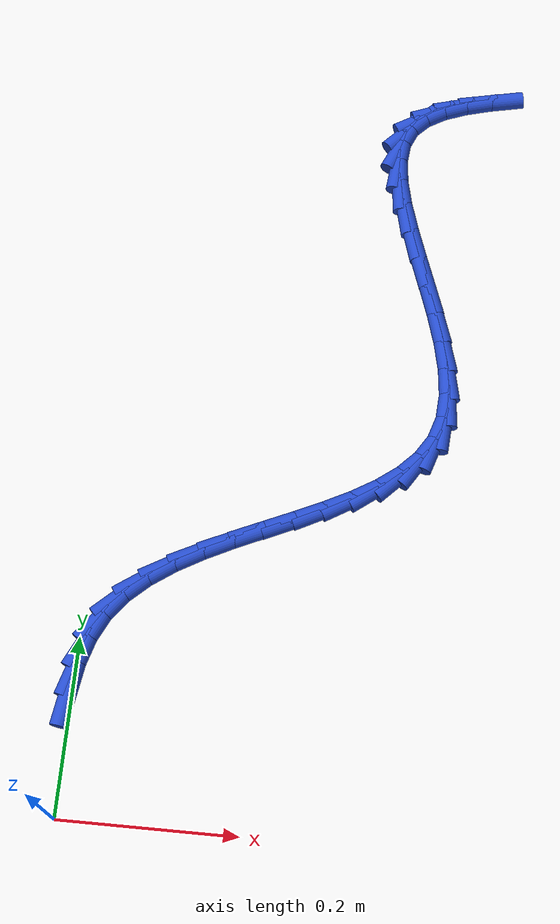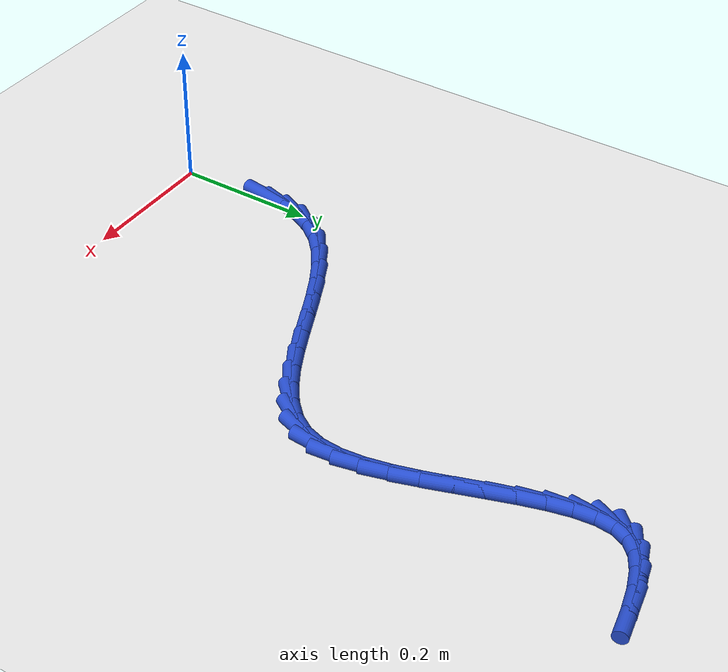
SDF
<sdf version="1.6">
 <world name="default">
  <model name="ground_plane">
   <static>1</static>
   <link name="link">
    <collision name="collision">
     <geometry><plane><normal>0 0 1</normal><size>100 100</size></plane></geometry>
     <surface><friction><ode><mu>100</mu><mu2>50</mu2></ode></friction></surface>
    </collision>
    <visual name="visual">
     <cast_shadows>0</cast_shadows>
     <geometry><plane><normal>0 0 1</normal><size>100 100</size></plane></geometry>
     <material>
      <script><uri>file://media/materials/scripts/gazebo.material</uri><name>Gazebo/WhiteGlow</name></script>
     </material>
    </visual>
   </link>
  </model>
  <model name="line">
   <link name="link_4">
    <pose>-0.0029370685498237925 0.137048403521154 0.01 0 1.57 1.4179691063453683</pose>
    <collision name="collision">
     <geometry><cylinder><radius>0.01</radius><length>0.08</length></cylinder></geometry>
    </collision>
    <visual name="visual">
     <material>
      <script><name>Gazebo/Blue</name><uri>file://media/materials/scripts/gazebo.material</uri></script>
     </material>
     <geometry><cylinder><radius>0.01</radius><length>0.08</length></cylinder></geometry>
    </visual>
   </link>
   <link name="link_5">
    <pose>0.001998958278450603 0.16909464480857384 0.01 0 1.57 1.2850943708031755</pose>
    <collision name="collision">
     <geometry><cylinder><radius>0.01</radius><length>0.08</length></cylinder></geometry>
    </collision>
    <visual name="visual">
     <material>
      <script><name>Gazebo/Blue</name><uri>file://media/materials/scripts/gazebo.material</uri></script>
     </material>
     <geometry><cylinder><radius>0.01</radius><length>0.08</length></cylinder></geometry>
    </visual>
   </link>
   <link name="link_6">
    <pose>0.010816575801971469 0.1991132957275735 0.01 0 1.57 1.1131262142818894</pose>
    <collision name="collision">
     <geometry><cylinder><radius>0.01</radius><length>0.08</length></cylinder></geometry>
    </collision>
    <visual name="visual">
     <material>
      <script><name>Gazebo/Blue</name><uri>file://media/materials/scripts/gazebo.material</uri></script>
     </material>
     <geometry><cylinder><radius>0.01</radius><length>0.08</length></cylinder></geometry>
    </visual>
   </link>
   <link name="link_7">
    <pose>0.02432252057521597 0.22653373301251667 0.01 0 1.57 0.912755148140058</pose>
    <collision name="collision">
     <geometry><cylinder><radius>0.01</radius><length>0.08</length></cylinder></geometry>
    </collision>
    <visual name="visual">
     <material>
      <script><name>Gazebo/Blue</name><uri>file://media/materials/scripts/gazebo.material</uri></script>
     </material>
     <geometry><cylinder><radius>0.01</radius><length>0.08</length></cylinder></geometry>
    </visual>
   </link>
   <link name="link_8">
    <pose>0.04315058680638629 0.2508917836698029 0.01 0 1.57 0.7380858928481054</pose>
    <collision name="collision">
     <geometry><cylinder><radius>0.01</radius><length>0.08</length></cylinder></geometry>
    </collision>
    <visual name="visual">
     <material>
      <script><name>Gazebo/Blue</name><uri>file://media/materials/scripts/gazebo.material</uri></script>
     </material>
     <geometry><cylinder><radius>0.01</radius><length>0.08</length></cylinder></geometry>
    </visual>
   </link>
   <link name="link_9">
    <pose>0.06681224707028963 0.272414091303156 0.01 0 1.57 0.6082317110557185</pose>
    <collision name="collision">
     <geometry><cylinder><radius>0.01</radius><length>0.08</length></cylinder></geometry>
    </collision>
    <visual name="visual">
     <material>
      <script><name>Gazebo/Blue</name><uri>file://media/materials/scripts/gazebo.material</uri></script>
     </material>
     <geometry><cylinder><radius>0.01</radius><length>0.08</length></cylinder></geometry>
    </visual>
   </link>
   <link name="link_10">
    <pose>0.09437104744143045 0.2916030093053501 0.01 0 1.57 0.5171569191798234</pose>
    <collision name="collision">
     <geometry><cylinder><radius>0.01</radius><length>0.08</length></cylinder></geometry>
    </collision>
    <visual name="visual">
     <material>
      <script><name>Gazebo/Blue</name><uri>file://media/materials/scripts/gazebo.material</uri></script>
     </material>
     <geometry><cylinder><radius>0.01</radius><length>0.08</length></cylinder></geometry>
    </visual>
   </link>
   <link name="link_11">
    <pose>0.12488936577738169 0.3089616101354428 0.01 0 1.57 0.4577607158504061</pose>
    <collision name="collision">
     <geometry><cylinder><radius>0.01</radius><length>0.08</length></cylinder></geometry>
    </collision>
    <visual name="visual">
     <material>
      <script><name>Gazebo/Blue</name><uri>file://media/materials/scripts/gazebo.material</uri></script>
     </material>
     <geometry><cylinder><radius>0.01</radius><length>0.08</length></cylinder></geometry>
    </visual>
   </link>
   <link name="link_12">
    <pose>0.1574295799357159 0.3249929662524916 0.01 0 1.57 0.4247360248727408</pose>
    <collision name="collision">
     <geometry><cylinder><radius>0.01</radius><length>0.08</length></cylinder></geometry>
    </collision>
    <visual name="visual">
     <material>
      <script><name>Gazebo/Blue</name><uri>file://media/materials/scripts/gazebo.material</uri></script>
     </material>
     <geometry><cylinder><radius>0.01</radius><length>0.08</length></cylinder></geometry>
    </visual>
   </link>
   <link name="link_13">
    <pose>0.191054067774006 0.34020015011555427 0.01 0 1.57 0.4151711122764104</pose>
    <collision name="collision">
     <geometry><cylinder><radius>0.01</radius><length>0.08</length></cylinder></geometry>
    </collision>
    <visual name="visual">
     <material>
      <script><name>Gazebo/Blue</name><uri>file://media/materials/scripts/gazebo.material</uri></script>
     </material>
     <geometry><cylinder><radius>0.01</radius><length>0.08</length></cylinder></geometry>
    </visual>
   </link>
   <link name="link_14">
    <pose>0.22482520714982485 0.3550862341836883 0.01 0 1.57 0.4285625223447429</pose>
    <collision name="collision">
     <geometry><cylinder><radius>0.01</radius><length>0.08</length></cylinder></geometry>
    </collision>
    <visual name="visual">
     <material>
      <script><name>Gazebo/Blue</name><uri>file://media/materials/scripts/gazebo.material</uri></script>
     </material>
     <geometry><cylinder><radius>0.01</radius><length>0.08</length></cylinder></geometry>
    </visual>
   </link>
   <link name="link_15">
    <pose>0.25780537592074504 0.3701542909159514 0.01 0 1.57 0.4669013654232105</pose>
    <collision name="collision">
     <geometry><cylinder><radius>0.01</radius><length>0.08</length></cylinder></geometry>
    </collision>
    <visual name="visual">
     <material>
      <script><name>Gazebo/Blue</name><uri>file://media/materials/scripts/gazebo.material</uri></script>
     </material>
     <geometry><cylinder><radius>0.01</radius><length>0.08</length></cylinder></geometry>
    </visual>
   </link>
   <link name="link_16">
    <pose>0.28905695194433934 0.385907392771401 0.01 0 1.57 0.5350002826190938</pose>
    <collision name="collision">
     <geometry><cylinder><radius>0.01</radius><length>0.08</length></cylinder></geometry>
    </collision>
    <visual name="visual">
     <material>
      <script><name>Gazebo/Blue</name><uri>file://media/materials/scripts/gazebo.material</uri></script>
     </material>
     <geometry><cylinder><radius>0.01</radius><length>0.08</length></cylinder></geometry>
    </visual>
   </link>
   <link name="link_17">
    <pose>0.3176423130781808 0.402848612209095 0.01 0 1.57 0.6408382634927831</pose>
    <collision name="collision">
     <geometry><cylinder><radius>0.01</radius><length>0.08</length></cylinder></geometry>
    </collision>
    <visual name="visual">
     <material>
      <script><name>Gazebo/Blue</name><uri>file://media/materials/scripts/gazebo.material</uri></script>
     </material>
     <geometry><cylinder><radius>0.01</radius><length>0.08</length></cylinder></geometry>
    </visual>
   </link>
   <link name="link_18">
    <pose>0.34262383717984185 0.42148102168809076 0.01 0 1.57 0.794766380300998</pose>
    <collision name="collision">
     <geometry><cylinder><radius>0.01</radius><length>0.08</length></cylinder></geometry>
    </collision>
    <visual name="visual">
     <material>
      <script><name>Gazebo/Blue</name><uri>file://media/materials/scripts/gazebo.material</uri></script>
     </material>
     <geometry><cylinder><radius>0.01</radius><length>0.08</length></cylinder></geometry>
    </visual>
   </link>
   <link name="link_19">
    <pose>0.36306390210689554 0.44230769366744604 0.01 0 1.57 1.004334595589213</pose>
    <collision name="collision">
     <geometry><cylinder><radius>0.01</radius><length>0.08</length></cylinder></geometry>
    </collision>
    <visual name="visual">
     <material>
      <script><name>Gazebo/Blue</name><uri>file://media/materials/scripts/gazebo.material</uri></script>
     </material>
     <geometry><cylinder><radius>0.01</radius><length>0.08</length></cylinder></geometry>
    </visual>
   </link>
   <link name="link_20">
    <pose>0.3780248857169144 0.46583170060621826 0.01 0 1.57 1.2606739714048936</pose>
    <collision name="collision">
     <geometry><cylinder><radius>0.01</radius><length>0.08</length></cylinder></geometry>
    </collision>
    <visual name="visual">
     <material>
      <script><name>Gazebo/Blue</name><uri>file://media/materials/scripts/gazebo.material</uri></script>
     </material>
     <geometry><cylinder><radius>0.01</radius><length>0.08</length></cylinder></geometry>
    </visual>
   </link>
   <link name="link_21">
    <pose>0.3865860484981557 0.49254672936063276 0.01 0 1.57 1.5016194777007026</pose>
    <collision name="collision">
     <geometry><cylinder><radius>0.01</radius><length>0.08</length></cylinder></geometry>
    </collision>
    <visual name="visual">
     <material>
      <script><name>Gazebo/Blue</name><uri>file://media/materials/scripts/gazebo.material</uri></script>
     </material>
     <geometry><cylinder><radius>0.01</radius><length>0.08</length></cylinder></geometry>
    </visual>
   </link>
   <link name="link_22">
    <pose>0.3886602577044926 0.522483037706042 0.01 0 1.57 -1.469624507470114</pose>
    <collision name="collision">
     <geometry><cylinder><radius>0.01</radius><length>0.08</length></cylinder></geometry>
    </collision>
    <visual name="visual">
     <material>
      <script><name>Gazebo/Blue</name><uri>file://media/materials/scripts/gazebo.material</uri></script>
     </material>
     <geometry><cylinder><radius>0.01</radius><length>0.08</length></cylinder></geometry>
    </visual>
   </link>
   <link name="link_23">
    <pose>0.3853587103914075 0.5550046929531245 0.01 0 1.57 -1.3569918511122476</pose>
    <collision name="collision">
     <geometry><cylinder><radius>0.01</radius><length>0.08</length></cylinder></geometry>
    </collision>
    <visual name="visual">
     <material>
      <script><name>Gazebo/Blue</name><uri>file://media/materials/scripts/gazebo.material</uri></script>
     </material>
     <geometry><cylinder><radius>0.01</radius><length>0.08</length></cylinder></geometry>
    </visual>
   </link>
   <link name="link_24">
    <pose>0.37788545608997237 0.5894241427050492 0.01 0 1.57 -1.2857373610418217</pose>
    <collision name="collision">
     <geometry><cylinder><radius>0.01</radius><length>0.08</length></cylinder></geometry>
    </collision>
    <visual name="visual">
     <material>
      <script><name>Gazebo/Blue</name><uri>file://media/materials/scripts/gazebo.material</uri></script>
     </material>
     <geometry><cylinder><radius>0.01</radius><length>0.08</length></cylinder></geometry>
    </visual>
   </link>
   <link name="link_25">
    <pose>0.367444544331259 0.6250538345649849 0.01 0 1.57 -1.2452237197164782</pose>
    <collision name="collision">
     <geometry><cylinder><radius>0.01</radius><length>0.08</length></cylinder></geometry>
    </collision>
    <visual name="visual">
     <material>
      <script><name>Gazebo/Blue</name><uri>file://media/materials/scripts/gazebo.material</uri></script>
     </material>
     <geometry><cylinder><radius>0.01</radius><length>0.08</length></cylinder></geometry>
    </visual>
   </link>
   <link name="link_26">
    <pose>0.35524002464633925 0.6612062161361008 0.01 0 1.57 -1.2299577273898759</pose>
    <collision name="collision">
     <geometry><cylinder><radius>0.01</radius><length>0.08</length></cylinder></geometry>
    </collision>
    <visual name="visual">
     <material>
      <script><name>Gazebo/Blue</name><uri>file://media/materials/scripts/gazebo.material</uri></script>
     </material>
     <geometry><cylinder><radius>0.01</radius><length>0.08</length></cylinder></geometry>
    </visual>
   </link>
   <link name="link_27">
    <pose>0.3424759465662848 0.6971937350215658 0.01 0 1.57 -1.2386342525289127</pose>
    <collision name="collision">
     <geometry><cylinder><radius>0.01</radius><length>0.08</length></cylinder></geometry>
    </collision>
    <visual name="visual">
     <material>
      <script><name>Gazebo/Blue</name><uri>file://media/materials/scripts/gazebo.material</uri></script>
     </material>
     <geometry><cylinder><radius>0.01</radius><length>0.08</length></cylinder></geometry>
    </visual>
   </link>
   <link name="link_28">
    <pose>0.3303563596221676 0.7323288388245488 0.01 0 1.57 -1.2740908342791253</pose>
    <collision name="collision">
     <geometry><cylinder><radius>0.01</radius><length>0.08</length></cylinder></geometry>
    </collision>
    <visual name="visual">
     <material>
      <script><name>Gazebo/Blue</name><uri>file://media/materials/scripts/gazebo.material</uri></script>
     </material>
     <geometry><cylinder><radius>0.01</radius><length>0.08</length></cylinder></geometry>
    </visual>
   </link>
   <link name="link_29">
    <pose>0.3200853133450595 0.7659239751482189 0.01 0 1.57 -1.3446097266032184</pose>
    <collision name="collision">
     <geometry><cylinder><radius>0.01</radius><length>0.08</length></cylinder></geometry>
    </collision>
    <visual name="visual">
     <material>
      <script><name>Gazebo/Blue</name><uri>file://media/materials/scripts/gazebo.material</uri></script>
     </material>
     <geometry><cylinder><radius>0.01</radius><length>0.08</length></cylinder></geometry>
    </visual>
   </link>
   <link name="link_30">
    <pose>0.3128668572660322 0.797291591595745 0.01 0 1.57 -1.4670731887423112</pose>
    <collision name="collision">
     <geometry><cylinder><radius>0.01</radius><length>0.08</length></cylinder></geometry>
    </collision>
    <visual name="visual">
     <material>
      <script><name>Gazebo/Blue</name><uri>file://media/materials/scripts/gazebo.material</uri></script>
     </material>
     <geometry><cylinder><radius>0.01</radius><length>0.08</length></cylinder></geometry>
    </visual>
   </link>
   <link name="link_31">
    <pose>0.3099050409161575 0.8257441357702957 0.01 0 1.57 1.4705746438133722</pose>
    <collision name="collision">
     <geometry><cylinder><radius>0.01</radius><length>0.08</length></cylinder></geometry>
    </collision>
    <visual name="visual">
     <material>
      <script><name>Gazebo/Blue</name><uri>file://media/materials/scripts/gazebo.material</uri></script>
     </material>
     <geometry><cylinder><radius>0.01</radius><length>0.08</length></cylinder></geometry>
    </visual>
   </link>
   <link name="link_32">
    <pose>0.3124039138265074 0.8505940552750406 0.01 0 1.57 1.153549362429377</pose>
    <collision name="collision">
     <geometry><cylinder><radius>0.01</radius><length>0.08</length></cylinder></geometry>
    </collision>
    <visual name="visual">
     <material>
      <script><name>Gazebo/Blue</name><uri>file://media/materials/scripts/gazebo.material</uri></script>
     </material>
     <geometry><cylinder><radius>0.01</radius><length>0.08</length></cylinder></geometry>
    </visual>
   </link>
   <link name="link_33">
    <pose>0.32152912092665425 0.8711799598083261 0.01 0 1.57 0.7983372861386757</pose>
    <collision name="collision">
     <geometry><cylinder><radius>0.01</radius><length>0.08</length></cylinder></geometry>
    </collision>
    <visual name="visual">
     <material>
      <script><name>Gazebo/Blue</name><uri>file://media/materials/scripts/gazebo.material</uri></script>
     </material>
     <geometry><cylinder><radius>0.01</radius><length>0.08</length></cylinder></geometry>
    </visual>
   </link>
   <link name="link_34">
    <pose>0.3374505262752971 0.8875188078314787 0.01 0 1.57 0.5315350479991833</pose>
    <collision name="collision">
     <geometry><cylinder><radius>0.01</radius><length>0.08</length></cylinder></geometry>
    </collision>
    <visual name="visual">
     <material>
      <script><name>Gazebo/Blue</name><uri>file://media/materials/scripts/gazebo.material</uri></script>
     </material>
     <geometry><cylinder><radius>0.01</radius><length>0.08</length></cylinder></geometry>
    </visual>
   </link>
   <link name="link_35">
    <pose>0.35927540351605197 0.9003514187622974 0.01 0 1.57 0.36068515970582293</pose>
    <collision name="collision">
     <geometry><cylinder><radius>0.01</radius><length>0.08</length></cylinder></geometry>
    </collision>
    <visual name="visual">
     <material>
      <script><name>Gazebo/Blue</name><uri>file://media/materials/scripts/gazebo.material</uri></script>
     </material>
     <geometry><cylinder><radius>0.01</radius><length>0.08</length></cylinder></geometry>
    </visual>
   </link>
   <link name="link_36">
    <pose>0.38605924211632514 0.9104538885868513 0.01 0 1.57 0.25864758303891344</pose>
    <collision name="collision">
     <geometry><cylinder><radius>0.01</radius><length>0.08</length></cylinder></geometry>
    </collision>
    <visual name="visual">
     <material>
      <script><name>Gazebo/Blue</name><uri>file://media/materials/scripts/gazebo.material</uri></script>
     </material>
     <geometry><cylinder><radius>0.01</radius><length>0.08</length></cylinder></geometry>
    </visual>
   </link>
   <link name="link_37">
    <pose>0.4168575315435216 0.9186023132912106 0.01 0 1.57 0.2029773694061563</pose>
    <collision name="collision">
     <geometry><cylinder><radius>0.01</radius><length>0.08</length></cylinder></geometry>
    </collision>
    <visual name="visual">
     <material>
      <script><name>Gazebo/Blue</name><uri>file://media/materials/scripts/gazebo.material</uri></script>
     </material>
     <geometry><cylinder><radius>0.01</radius><length>0.08</length></cylinder></geometry>
    </visual>
   </link>
  </model>
 </world>
</sdf>
